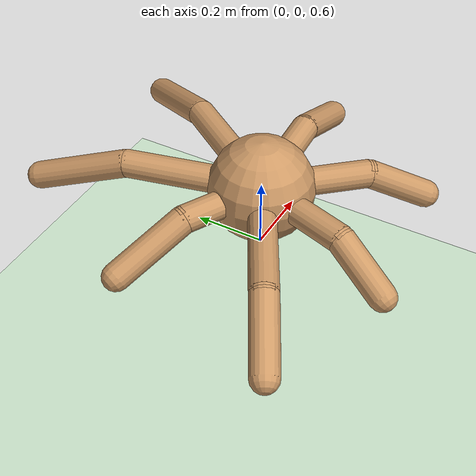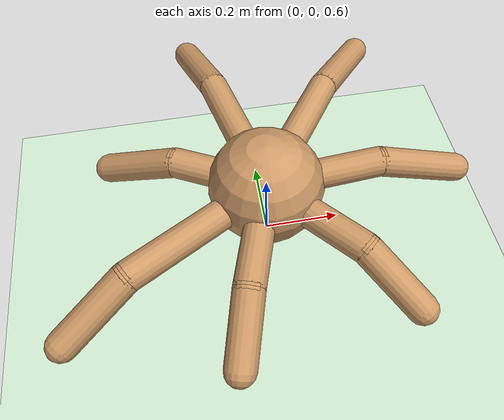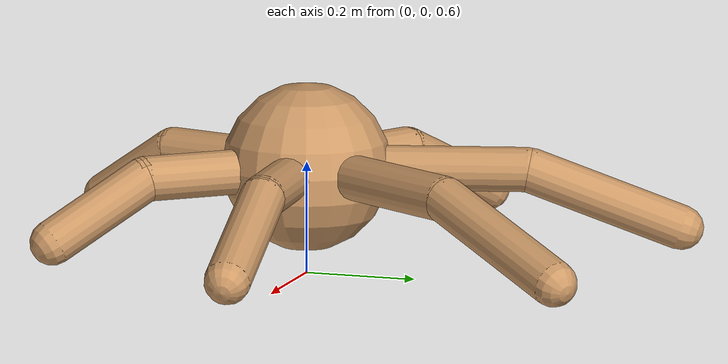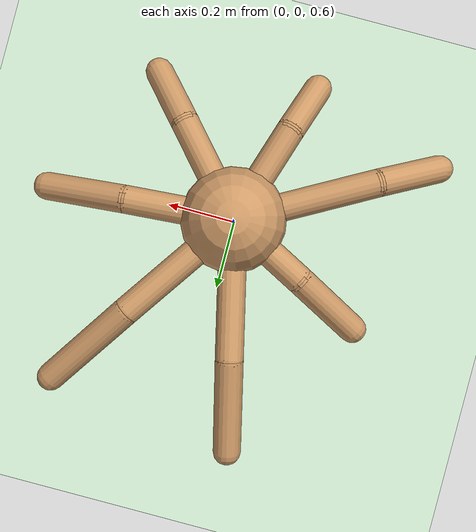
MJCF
<mujoco model="mutant_ant">
  <compiler angle="degree" coordinate="local" inertiafromgeom="true"/>
  <option integrator="RK4" timestep="0.01"/>
  <default>
    <joint armature="1" damping="1" limited="true"/>
    <geom conaffinity="1" condim="3" density="5.0" friction="1 0.5 0.5" margin="0.01" rgba="0.8 0.6 0.4 1"/>
  </default>
  <asset>
    <texture builtin="checker" height="512" name="texplane" rgb1=".2 .3 .4" rgb2=".1 0.15 0.2" type="2d" width="512"/>
    <material name="MatPlane" reflectance="0.5" shininess="1" specular="1" texrepeat="60 60" texture="texplane"/>
  </asset>
  <worldbody>
    <light cutoff="100" diffuse="1 1 1" dir="-0 0 -1.3" directional="true" exponent="1" pos="0 0 1.3" specular=".1 .1 .1"/>
    <geom conaffinity="1" condim="3" material="MatPlane" name="floor" pos="0 0 0" rgba="0.8 0.9 0.8 1" size="40 40 40" type="plane"/>
    <body name="torso" pos="0 0 0.792">
      <camera name="track" mode="trackcom" pos="0 -3 2.0" euler="60 0 0"/>
      <freejoint name="root"/>
      <geom name="torso_geom" pos="0 0 0" size="0.15" type="sphere"/>
      <body name="leg_0" pos="0 0 0" euler="0 0 4.202">
        <geom fromto="0.0 0.0 0.0 0.1 0.0 0.0" name="aux_0_geom" size="0.04" type="capsule"/>
        <body name="leg_0_aux" pos="0.1 0.0 0">
          <joint axis="0 0 1" name="hip_0" pos="0.0 0.0 0.0" range="-32.109 33.326" type="hinge"/>
          <geom fromto="0.0 0.0 0.0 0.209 0.0 0.0" name="thigh_0_geom" size="0.04" type="capsule"/>
          <body pos="0.209 0.0 0" name="leg_0_ankle">
            <joint axis="0 1 0" name="ankle_0" pos="0.0 0.0 0.0" range="39.279 63.763" type="hinge"/>
            <geom fromto="0.0 0.0 0.0 0.237 0.0 -0.1" name="calf_0_geom" size="0.04" type="capsule"/>
          </body>
        </body>
      </body>
      <body name="leg_1" pos="0 0 0" euler="0 0 55.295">
        <geom fromto="0.0 0.0 0.0 0.1 0.0 0.0" name="aux_1_geom" size="0.04" type="capsule"/>
        <body name="leg_1_aux" pos="0.1 0.0 0">
          <joint axis="0 0 1" name="hip_1" pos="0.0 0.0 0.0" range="-26.595 34.319" type="hinge"/>
          <geom fromto="0.0 0.0 0.0 0.295 0.0 0.0" name="thigh_1_geom" size="0.04" type="capsule"/>
          <body pos="0.295 0.0 0" name="leg_1_ankle">
            <joint axis="0 1 0" name="ankle_1" pos="0.0 0.0 0.0" range="21.603 71.534" type="hinge"/>
            <geom fromto="0.0 0.0 0.0 0.297 0.0 -0.1" name="calf_1_geom" size="0.04" type="capsule"/>
          </body>
        </body>
      </body>
      <body name="leg_2" pos="0 0 0" euler="0 0 103.178">
        <geom fromto="0.0 0.0 0.0 0.1 0.0 0.0" name="aux_2_geom" size="0.04" type="capsule"/>
        <body name="leg_2_aux" pos="0.1 0.0 0">
          <joint axis="0 0 1" name="hip_2" pos="0.0 0.0 0.0" range="-33.035 25.372" type="hinge"/>
          <geom fromto="0.0 0.0 0.0 0.294 0.0 0.0" name="thigh_2_geom" size="0.04" type="capsule"/>
          <body pos="0.294 0.0 0" name="leg_2_ankle">
            <joint axis="0 1 0" name="ankle_2" pos="0.0 0.0 0.0" range="22.256 65.812" type="hinge"/>
            <geom fromto="0.0 0.0 0.0 0.270 0.0 -0.1" name="calf_2_geom" size="0.04" type="capsule"/>
          </body>
        </body>
      </body>
      <body name="leg_3" pos="0 0 0" euler="0 0 152.577">
        <geom fromto="0.0 0.0 0.0 0.1 0.0 0.0" name="aux_3_geom" size="0.04" type="capsule"/>
        <body name="leg_3_aux" pos="0.1 0.0 0">
          <joint axis="0 0 1" name="hip_3" pos="0.0 0.0 0.0" range="-28.358 28.002" type="hinge"/>
          <geom fromto="0.0 0.0 0.0 0.152 0.0 0.0" name="thigh_3_geom" size="0.04" type="capsule"/>
          <body pos="0.152 0.0 0" name="leg_3_ankle">
            <joint axis="0 1 0" name="ankle_3" pos="0.0 0.0 0.0" range="20.688 79.680" type="hinge"/>
            <geom fromto="0.0 0.0 0.0 0.210 0.0 -0.1" name="calf_3_geom" size="0.04" type="capsule"/>
          </body>
        </body>
      </body>
      <body name="leg_4" pos="0 0 0" euler="0 0 209.147">
        <geom fromto="0.0 0.0 0.0 0.1 0.0 0.0" name="aux_4_geom" size="0.04" type="capsule"/>
        <body name="leg_4_aux" pos="0.1 0.0 0">
          <joint axis="0 0 1" name="hip_4" pos="0.0 0.0 0.0" range="-32.609 33.895" type="hinge"/>
          <geom fromto="0.0 0.0 0.0 0.318 0.0 0.0" name="thigh_4_geom" size="0.04" type="capsule"/>
          <body pos="0.318 0.0 0" name="leg_4_ankle">
            <joint axis="0 1 0" name="ankle_4" pos="0.0 0.0 0.0" range="22.846 61.977" type="hinge"/>
            <geom fromto="0.0 0.0 0.0 0.193 0.0 -0.1" name="calf_4_geom" size="0.04" type="capsule"/>
          </body>
        </body>
      </body>
      <body name="leg_5" pos="0 0 0" euler="0 0 252.413">
        <geom fromto="0.0 0.0 0.0 0.1 0.0 0.0" name="aux_5_geom" size="0.04" type="capsule"/>
        <body name="leg_5_aux" pos="0.1 0.0 0">
          <joint axis="0 0 1" name="hip_5" pos="0.0 0.0 0.0" range="-27.853 27.903" type="hinge"/>
          <geom fromto="0.0 0.0 0.0 0.196 0.0 0.0" name="thigh_5_geom" size="0.04" type="capsule"/>
          <body pos="0.196 0.0 0" name="leg_5_ankle">
            <joint axis="0 1 0" name="ankle_5" pos="0.0 0.0 0.0" range="31.382 69.563" type="hinge"/>
            <geom fromto="0.0 0.0 0.0 0.156 0.0 -0.1" name="calf_5_geom" size="0.04" type="capsule"/>
          </body>
        </body>
      </body>
      <body name="leg_6" pos="0 0 0" euler="0 0 311.327">
        <geom fromto="0.0 0.0 0.0 0.1 0.0 0.0" name="aux_6_geom" size="0.04" type="capsule"/>
        <body name="leg_6_aux" pos="0.1 0.0 0">
          <joint axis="0 0 1" name="hip_6" pos="0.0 0.0 0.0" range="-31.059 33.215" type="hinge"/>
          <geom fromto="0.0 0.0 0.0 0.207 0.0 0.0" name="thigh_6_geom" size="0.04" type="capsule"/>
          <body pos="0.207 0.0 0" name="leg_6_ankle">
            <joint axis="0 1 0" name="ankle_6" pos="0.0 0.0 0.0" range="31.398 68.273" type="hinge"/>
            <geom fromto="0.0 0.0 0.0 0.174 0.0 -0.1" name="calf_6_geom" size="0.04" type="capsule"/>
          </body>
        </body>
      </body>
    </body>
  </worldbody>
  <actuator>
    <motor ctrllimited="true" ctrlrange="-1.0 1.0" joint="hip_0" gear="30"/>
    <motor ctrllimited="true" ctrlrange="-1.0 1.0" joint="ankle_0" gear="30"/>
    <motor ctrllimited="true" ctrlrange="-1.0 1.0" joint="hip_1" gear="30"/>
    <motor ctrllimited="true" ctrlrange="-1.0 1.0" joint="ankle_1" gear="30"/>
    <motor ctrllimited="true" ctrlrange="-1.0 1.0" joint="hip_2" gear="30"/>
    <motor ctrllimited="true" ctrlrange="-1.0 1.0" joint="ankle_2" gear="30"/>
    <motor ctrllimited="true" ctrlrange="-1.0 1.0" joint="hip_3" gear="30"/>
    <motor ctrllimited="true" ctrlrange="-1.0 1.0" joint="ankle_3" gear="30"/>
    <motor ctrllimited="true" ctrlrange="-1.0 1.0" joint="hip_4" gear="30"/>
    <motor ctrllimited="true" ctrlrange="-1.0 1.0" joint="ankle_4" gear="30"/>
    <motor ctrllimited="true" ctrlrange="-1.0 1.0" joint="hip_5" gear="30"/>
    <motor ctrllimited="true" ctrlrange="-1.0 1.0" joint="ankle_5" gear="30"/>
    <motor ctrllimited="true" ctrlrange="-1.0 1.0" joint="hip_6" gear="30"/>
    <motor ctrllimited="true" ctrlrange="-1.0 1.0" joint="ankle_6" gear="30"/>
  </actuator>
</mujoco>
